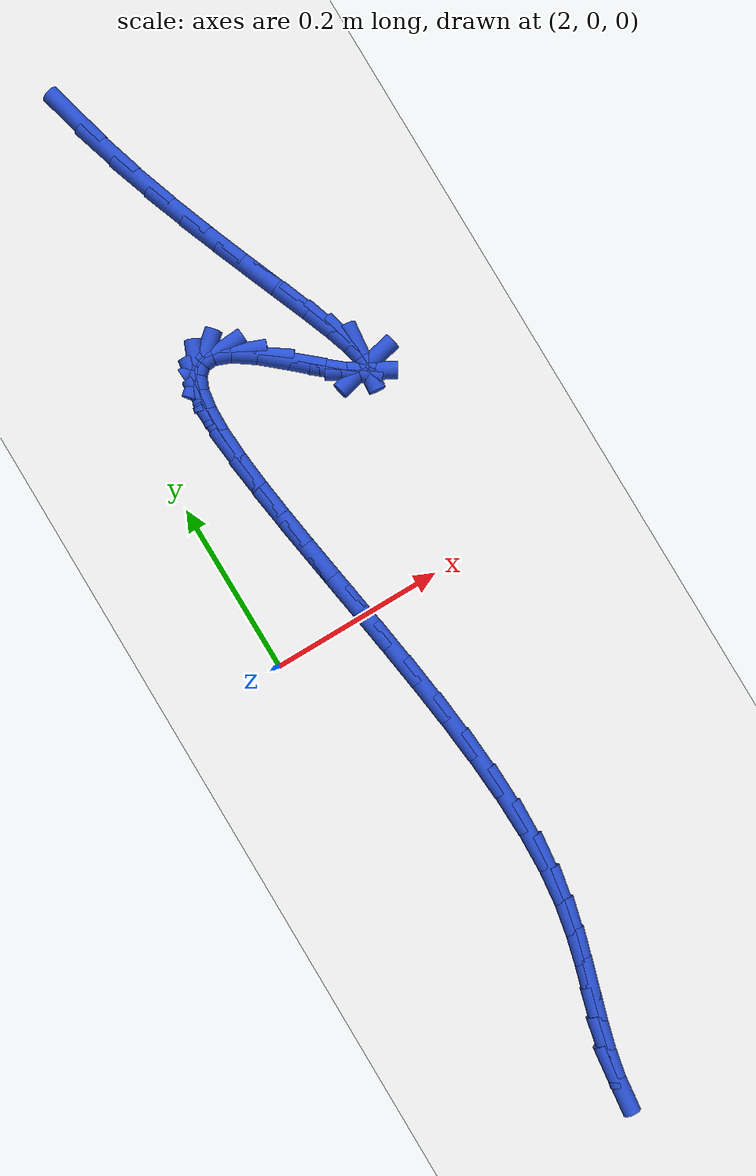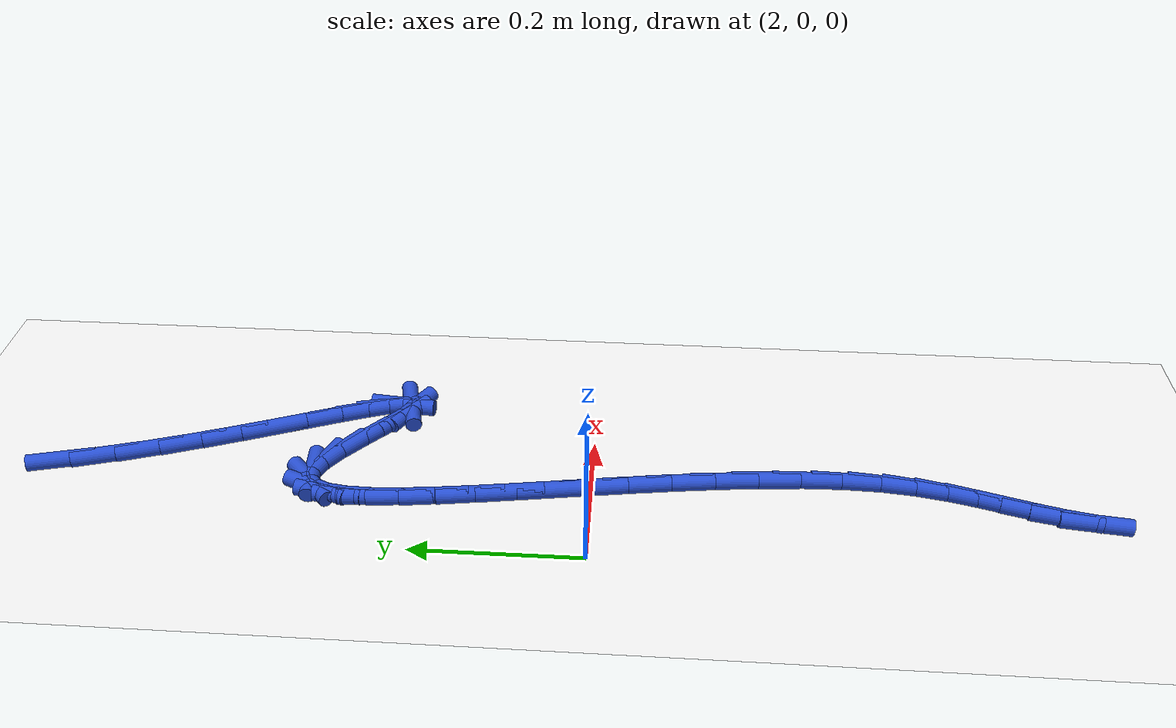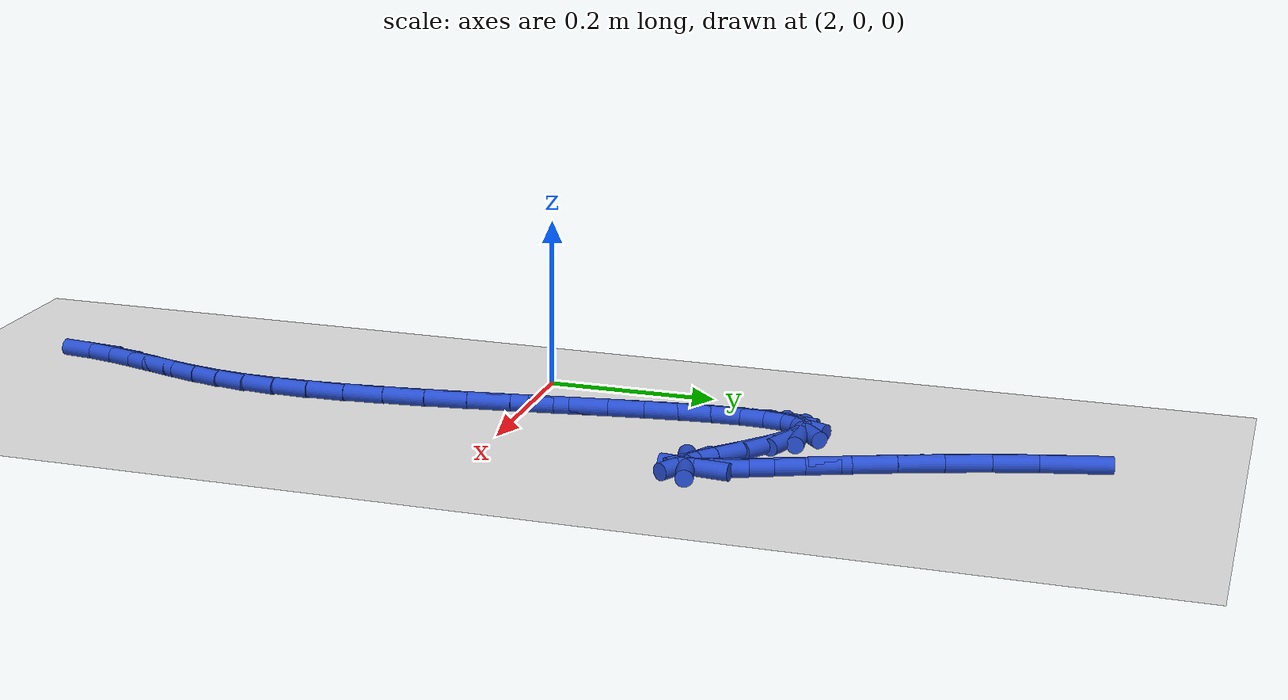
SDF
<sdf version="1.6">
 <world name="default">
  <model name="ground_plane">
   <static>1</static>
   <link name="link">
    <collision name="collision">
     <geometry><plane><normal>0 0 1</normal><size>100 100</size></plane></geometry>
     <surface><friction><ode><mu>100</mu><mu2>50</mu2></ode></friction></surface>
    </collision>
    <visual name="visual">
     <cast_shadows>0</cast_shadows>
     <geometry><plane><normal>0 0 1</normal><size>100 100</size></plane></geometry>
     <material>
      <script><uri>file://media/materials/scripts/gazebo.material</uri><name>Gazebo/WhiteGlow</name></script>
     </material>
    </visual>
   </link>
  </model>
  <model name="line">
   <link name="link_110">
    <pose>2.1158589371976775 0.6339047028070735 0.01 0 1.57 -1.317194379777008</pose>
    <collision name="collision">
     <geometry><cylinder><radius>0.01</radius><length>0.08</length></cylinder></geometry>
    </collision>
    <visual name="visual">
     <material>
      <script><name>Gazebo/Blue</name><uri>file://media/materials/scripts/gazebo.material</uri></script>
     </material>
     <geometry><cylinder><radius>0.01</radius><length>0.08</length></cylinder></geometry>
    </visual>
   </link>
   <link name="link_111">
    <pose>2.1286142076120895 0.5846911867525364 0.01 0 1.57 -1.2710996903935277</pose>
    <collision name="collision">
     <geometry><cylinder><radius>0.01</radius><length>0.08</length></cylinder></geometry>
    </collision>
    <visual name="visual">
     <material>
      <script><name>Gazebo/Blue</name><uri>file://media/materials/scripts/gazebo.material</uri></script>
     </material>
     <geometry><cylinder><radius>0.01</radius><length>0.08</length></cylinder></geometry>
    </visual>
   </link>
   <link name="link_112">
    <pose>2.143838883842318 0.5354210099387978 0.01 0 1.57 -1.236322468500971</pose>
    <collision name="collision">
     <geometry><cylinder><radius>0.01</radius><length>0.08</length></cylinder></geometry>
    </collision>
    <visual name="visual">
     <material>
      <script><name>Gazebo/Blue</name><uri>file://media/materials/scripts/gazebo.material</uri></script>
     </material>
     <geometry><cylinder><radius>0.01</radius><length>0.08</length></cylinder></geometry>
    </visual>
   </link>
   <link name="link_113">
    <pose>2.1606768922853425 0.4869706760344255 0.01 0 1.57 -1.2108537880325057</pose>
    <collision name="collision">
     <geometry><cylinder><radius>0.01</radius><length>0.08</length></cylinder></geometry>
    </collision>
    <visual name="visual">
     <material>
      <script><name>Gazebo/Blue</name><uri>file://media/materials/scripts/gazebo.material</uri></script>
     </material>
     <geometry><cylinder><radius>0.01</radius><length>0.08</length></cylinder></geometry>
    </visual>
   </link>
   <link name="link_114">
    <pose>2.1782721593381407 0.4402166887079872 0.01 0 1.57 -1.1937288525492873</pose>
    <collision name="collision">
     <geometry><cylinder><radius>0.01</radius><length>0.08</length></cylinder></geometry>
    </collision>
    <visual name="visual">
     <material>
      <script><name>Gazebo/Blue</name><uri>file://media/materials/scripts/gazebo.material</uri></script>
     </material>
     <geometry><cylinder><radius>0.01</radius><length>0.08</length></cylinder></geometry>
    </visual>
   </link>
   <link name="link_115">
    <pose>2.19576861139769 0.39603555162805004 0.01 0 1.57 -1.1850342734372086</pose>
    <collision name="collision">
     <geometry><cylinder><radius>0.01</radius><length>0.08</length></cylinder></geometry>
    </collision>
    <visual name="visual">
     <material>
      <script><name>Gazebo/Blue</name><uri>file://media/materials/scripts/gazebo.material</uri></script>
     </material>
     <geometry><cylinder><radius>0.01</radius><length>0.08</length></cylinder></geometry>
    </visual>
   </link>
   <link name="link_116">
    <pose>2.2123101748609697 0.3553037684631832 0.01 0 1.57 -1.186312705276774</pose>
    <collision name="collision">
     <geometry><cylinder><radius>0.01</radius><length>0.08</length></cylinder></geometry>
    </collision>
    <visual name="visual">
     <material>
      <script><name>Gazebo/Blue</name><uri>file://media/materials/scripts/gazebo.material</uri></script>
     </material>
     <geometry><cylinder><radius>0.01</radius><length>0.08</length></cylinder></geometry>
    </visual>
   </link>
   <link name="link_117">
    <pose>2.2270407761249578 0.31889784288195366 0.01 0 1.57 -1.2018873197415114</pose>
    <collision name="collision">
     <geometry><cylinder><radius>0.01</radius><length>0.08</length></cylinder></geometry>
    </collision>
    <visual name="visual">
     <material>
      <script><name>Gazebo/Blue</name><uri>file://media/materials/scripts/gazebo.material</uri></script>
     </material>
     <geometry><cylinder><radius>0.01</radius><length>0.08</length></cylinder></geometry>
    </visual>
   </link>
   <link name="link_118">
    <pose>2.2391043415866325 0.28769427855292884 0.01 0 1.57 -1.2431270975575117</pose>
    <collision name="collision">
     <geometry><cylinder><radius>0.01</radius><length>0.08</length></cylinder></geometry>
    </collision>
    <visual name="visual">
     <material>
      <script><name>Gazebo/Blue</name><uri>file://media/materials/scripts/gazebo.material</uri></script>
     </material>
     <geometry><cylinder><radius>0.01</radius><length>0.08</length></cylinder></geometry>
    </visual>
   </link>
   <link name="link_119">
    <pose>2.2476447976429705 0.2625695791446774 0.01 0 1.57 -1.3456519502989017</pose>
    <collision name="collision">
     <geometry><cylinder><radius>0.01</radius><length>0.08</length></cylinder></geometry>
    </collision>
    <visual name="visual">
     <material>
      <script><name>Gazebo/Blue</name><uri>file://media/materials/scripts/gazebo.material</uri></script>
     </material>
     <geometry><cylinder><radius>0.01</radius><length>0.08</length></cylinder></geometry>
    </visual>
   </link>
   <link name="link_120">
    <pose>2.251806070690952 0.24440024832576662 0.01 0 1.57 1.4672752990570375</pose>
    <collision name="collision">
     <geometry><cylinder><radius>0.01</radius><length>0.08</length></cylinder></geometry>
    </collision>
    <visual name="visual">
     <material>
      <script><name>Gazebo/Blue</name><uri>file://media/materials/scripts/gazebo.material</uri></script>
     </material>
     <geometry><cylinder><radius>0.01</radius><length>0.08</length></cylinder></geometry>
    </visual>
   </link>
   <link name="link_121">
    <pose>2.2507320871275547 0.23406278976476436 0.01 0 1.57 0.22355651961956546</pose>
    <collision name="collision">
     <geometry><cylinder><radius>0.01</radius><length>0.08</length></cylinder></geometry>
    </collision>
    <visual name="visual">
     <material>
      <script><name>Gazebo/Blue</name><uri>file://media/materials/scripts/gazebo.material</uri></script>
     </material>
     <geometry><cylinder><radius>0.01</radius><length>0.08</length></cylinder></geometry>
    </visual>
   </link>
   <link name="link_122">
    <pose>2.2435667733497557 0.23243370713023825 0.01 0 1.57 -0.5133251954797678</pose>
    <collision name="collision">
     <geometry><cylinder><radius>0.01</radius><length>0.08</length></cylinder></geometry>
    </collision>
    <visual name="visual">
     <material>
      <script><name>Gazebo/Blue</name><uri>file://media/materials/scripts/gazebo.material</uri></script>
     </material>
     <geometry><cylinder><radius>0.01</radius><length>0.08</length></cylinder></geometry>
    </visual>
   </link>
   <link name="link_123">
    <pose>2.2294540557545344 0.2403895040907564 0.01 0 1.57 -0.6924792559503505</pose>
    <collision name="collision">
     <geometry><cylinder><radius>0.01</radius><length>0.08</length></cylinder></geometry>
    </collision>
    <visual name="visual">
     <material>
      <script><name>Gazebo/Blue</name><uri>file://media/materials/scripts/gazebo.material</uri></script>
     </material>
     <geometry><cylinder><radius>0.01</radius><length>0.08</length></cylinder></geometry>
    </visual>
   </link>
   <link name="link_124">
    <pose>2.207921578642005 0.2582509680688755 0.01 0 1.57 -0.7312109668631709</pose>
    <collision name="collision">
     <geometry><cylinder><radius>0.01</radius><length>0.08</length></cylinder></geometry>
    </collision>
    <visual name="visual">
     <material>
      <script><name>Gazebo/Blue</name><uri>file://media/materials/scripts/gazebo.material</uri></script>
     </material>
     <geometry><cylinder><radius>0.01</radius><length>0.08</length></cylinder></geometry>
    </visual>
   </link>
   <link name="link_125">
    <pose>2.1815653413156193 0.2818951669996196 0.01 0 1.57 -0.7072099013966577</pose>
    <collision name="collision">
     <geometry><cylinder><radius>0.01</radius><length>0.08</length></cylinder></geometry>
    </collision>
    <visual name="visual">
     <material>
      <script><name>Gazebo/Blue</name><uri>file://media/materials/scripts/gazebo.material</uri></script>
     </material>
     <geometry><cylinder><radius>0.01</radius><length>0.08</length></cylinder></geometry>
    </visual>
   </link>
   <link name="link_126">
    <pose>2.154453119203809 0.3050676813464699 0.01 0 1.57 -0.6073813588266773</pose>
    <collision name="collision">
     <geometry><cylinder><radius>0.01</radius><length>0.08</length></cylinder></geometry>
    </collision>
    <visual name="visual">
     <material>
      <script><name>Gazebo/Blue</name><uri>file://media/materials/scripts/gazebo.material</uri></script>
     </material>
     <geometry><cylinder><radius>0.01</radius><length>0.08</length></cylinder></geometry>
    </visual>
   </link>
   <link name="link_127">
    <pose>2.130541407724269 0.32168699416335994 0.01 0 1.57 -0.37546895505001837</pose>
    <collision name="collision">
     <geometry><cylinder><radius>0.01</radius><length>0.08</length></cylinder></geometry>
    </collision>
    <visual name="visual">
     <material>
      <script><name>Gazebo/Blue</name><uri>file://media/materials/scripts/gazebo.material</uri></script>
     </material>
     <geometry><cylinder><radius>0.01</radius><length>0.08</length></cylinder></geometry>
    </visual>
   </link>
   <link name="link_128">
    <pose>2.111511715236256 0.3291878955446508 0.01 0 1.57 0.07212743209415834</pose>
    <collision name="collision">
     <geometry><cylinder><radius>0.01</radius><length>0.08</length></cylinder></geometry>
    </collision>
    <visual name="visual">
     <material>
      <script><name>Gazebo/Blue</name><uri>file://media/materials/scripts/gazebo.material</uri></script>
     </material>
     <geometry><cylinder><radius>0.01</radius><length>0.08</length></cylinder></geometry>
    </visual>
   </link>
   <link name="link_129">
    <pose>2.0970169802356833 0.3281406107802763 0.01 0 1.57 0.7097381465527445</pose>
    <collision name="collision">
     <geometry><cylinder><radius>0.01</radius><length>0.08</length></cylinder></geometry>
    </collision>
    <visual name="visual">
     <material>
      <script><name>Gazebo/Blue</name><uri>file://media/materials/scripts/gazebo.material</uri></script>
     </material>
     <geometry><cylinder><radius>0.01</radius><length>0.08</length></cylinder></geometry>
    </visual>
   </link>
   <link name="link_130">
    <pose>2.086639066683292 0.3192252206810993 0.01 0 1.57 1.17762160197824</pose>
    <collision name="collision">
     <geometry><cylinder><radius>0.01</radius><length>0.08</length></cylinder></geometry>
    </collision>
    <visual name="visual">
     <material>
      <script><name>Gazebo/Blue</name><uri>file://media/materials/scripts/gazebo.material</uri></script>
     </material>
     <geometry><cylinder><radius>0.01</radius><length>0.08</length></cylinder></geometry>
    </visual>
   </link>
   <link name="link_131">
    <pose>2.0799598385398257 0.303121806057983 0.01 0 1.57 1.4216047064702542</pose>
    <collision name="collision">
     <geometry><cylinder><radius>0.01</radius><length>0.08</length></cylinder></geometry>
    </collision>
    <visual name="visual">
     <material>
      <script><name>Gazebo/Blue</name><uri>file://media/materials/scripts/gazebo.material</uri></script>
     </material>
     <geometry><cylinder><radius>0.01</radius><length>0.08</length></cylinder></geometry>
    </visual>
   </link>
   <link name="link_132">
    <pose>2.0765611597660247 0.2805104477217902 0.01 0 1.57 1.5519420166640043</pose>
    <collision name="collision">
     <geometry><cylinder><radius>0.01</radius><length>0.08</length></cylinder></geometry>
    </collision>
    <visual name="visual">
     <material>
      <script><name>Gazebo/Blue</name><uri>file://media/materials/scripts/gazebo.material</uri></script>
     </material>
     <geometry><cylinder><radius>0.01</radius><length>0.08</length></cylinder></geometry>
    </visual>
   </link>
   <link name="link_133">
    <pose>2.076024894322633 0.2520712264833829 0.01 0 1.57 -1.5140492775937615</pose>
    <collision name="collision">
     <geometry><cylinder><radius>0.01</radius><length>0.08</length></cylinder></geometry>
    </collision>
    <visual name="visual">
     <material>
      <script><name>Gazebo/Blue</name><uri>file://media/materials/scripts/gazebo.material</uri></script>
     </material>
     <geometry><cylinder><radius>0.01</radius><length>0.08</length></cylinder></geometry>
    </visual>
   </link>
   <link name="link_134">
    <pose>2.077932906170392 0.2184842231536257 0.01 0 1.57 -1.4677807705174393</pose>
    <collision name="collision">
     <geometry><cylinder><radius>0.01</radius><length>0.08</length></cylinder></geometry>
    </collision>
    <visual name="visual">
     <material>
      <script><name>Gazebo/Blue</name><uri>file://media/materials/scripts/gazebo.material</uri></script>
     </material>
     <geometry><cylinder><radius>0.01</radius><length>0.08</length></cylinder></geometry>
    </visual>
   </link>
   <link name="link_135">
    <pose>2.081867059270045 0.18042951854338093 0.01 0 1.57 -1.4391094551252803</pose>
    <collision name="collision">
     <geometry><cylinder><radius>0.01</radius><length>0.08</length></cylinder></geometry>
    </collision>
    <visual name="visual">
     <material>
      <script><name>Gazebo/Blue</name><uri>file://media/materials/scripts/gazebo.material</uri></script>
     </material>
     <geometry><cylinder><radius>0.01</radius><length>0.08</length></cylinder></geometry>
    </visual>
   </link>
   <link name="link_136">
    <pose>2.087409217582333 0.13858719346351156 0.01 0 1.57 -1.4221338008619961</pose>
    <collision name="collision">
     <geometry><cylinder><radius>0.01</radius><length>0.08</length></cylinder></geometry>
    </collision>
    <visual name="visual">
     <material>
      <script><name>Gazebo/Blue</name><uri>file://media/materials/scripts/gazebo.material</uri></script>
     </material>
     <geometry><cylinder><radius>0.01</radius><length>0.08</length></cylinder></geometry>
    </visual>
   </link>
   <link name="link_137">
    <pose>2.0941412450679993 0.09363732872488054 0.01 0 1.57 -1.4137181408235187</pose>
    <collision name="collision">
     <geometry><cylinder><radius>0.01</radius><length>0.08</length></cylinder></geometry>
    </collision>
    <visual name="visual">
     <material>
      <script><name>Gazebo/Blue</name><uri>file://media/materials/scripts/gazebo.material</uri></script>
     </material>
     <geometry><cylinder><radius>0.01</radius><length>0.08</length></cylinder></geometry>
    </visual>
   </link>
   <link name="link_138">
    <pose>2.101645005687786 0.04626000513835078 0.01 0 1.57 -1.4121925621940952</pose>
    <collision name="collision">
     <geometry><cylinder><radius>0.01</radius><length>0.08</length></cylinder></geometry>
    </collision>
    <visual name="visual">
     <material>
      <script><name>Gazebo/Blue</name><uri>file://media/materials/scripts/gazebo.material</uri></script>
     </material>
     <geometry><cylinder><radius>0.01</radius><length>0.08</length></cylinder></geometry>
    </visual>
   </link>
   <link name="link_139">
    <pose>2.109502363402435 -0.0028646964852147294 0.01 0 1.57 -1.4167659609694032</pose>
    <collision name="collision">
     <geometry><cylinder><radius>0.01</radius><length>0.08</length></cylinder></geometry>
    </collision>
    <visual name="visual">
     <material>
      <script><name>Gazebo/Blue</name><uri>file://media/materials/scripts/gazebo.material</uri></script>
     </material>
     <geometry><cylinder><radius>0.01</radius><length>0.08</length></cylinder></geometry>
    </visual>
   </link>
   <link name="link_140">
    <pose>2.1172951821726884 -0.053056695334954565 0.01 0 1.57 -1.4272616169550465</pose>
    <collision name="collision">
     <geometry><cylinder><radius>0.01</radius><length>0.08</length></cylinder></geometry>
    </collision>
    <visual name="visual">
     <material>
      <script><name>Gazebo/Blue</name><uri>file://media/materials/scripts/gazebo.material</uri></script>
     </material>
     <geometry><cylinder><radius>0.01</radius><length>0.08</length></cylinder></geometry>
    </visual>
   </link>
   <link name="link_141">
    <pose>2.1246053259592896 -0.1036359106000028 0.01 0 1.57 -1.4440231551604403</pose>
    <collision name="collision">
     <geometry><cylinder><radius>0.01</radius><length>0.08</length></cylinder></geometry>
    </collision>
    <visual name="visual">
     <material>
      <script><name>Gazebo/Blue</name><uri>file://media/materials/scripts/gazebo.material</uri></script>
     </material>
     <geometry><cylinder><radius>0.01</radius><length>0.08</length></cylinder></geometry>
    </visual>
   </link>
   <link name="link_142">
    <pose>2.131014658722979 -0.15392226146949778 0.01 0 1.57 -1.4679354464349277</pose>
    <collision name="collision">
     <geometry><cylinder><radius>0.01</radius><length>0.08</length></cylinder></geometry>
    </collision>
    <visual name="visual">
     <material>
      <script><name>Gazebo/Blue</name><uri>file://media/materials/scripts/gazebo.material</uri></script>
     </material>
     <geometry><cylinder><radius>0.01</radius><length>0.08</length></cylinder></geometry>
    </visual>
   </link>
   <link name="link_143">
    <pose>2.1361050444245007 -0.20323566713257674 0.01 0 1.57 -1.5005537955715287</pose>
    <collision name="collision">
     <geometry><cylinder><radius>0.01</radius><length>0.08</length></cylinder></geometry>
    </collision>
    <visual name="visual">
     <material>
      <script><name>Gazebo/Blue</name><uri>file://media/materials/scripts/gazebo.material</uri></script>
     </material>
     <geometry><cylinder><radius>0.01</radius><length>0.08</length></cylinder></geometry>
    </visual>
   </link>
   <link name="link_144">
    <pose>2.1394583470245956 -0.25089604677837657 0.01 0 1.57 -1.5443706344644177</pose>
    <collision name="collision">
     <geometry><cylinder><radius>0.01</radius><length>0.08</length></cylinder></geometry>
    </collision>
    <visual name="visual">
     <material>
      <script><name>Gazebo/Blue</name><uri>file://media/materials/scripts/gazebo.material</uri></script>
     </material>
     <geometry><cylinder><radius>0.01</radius><length>0.08</length></cylinder></geometry>
    </visual>
   </link>
   <link name="link_145">
    <pose>2.140656430484007 -0.29622331959603443 0.01 0 1.57 1.5383062524820228</pose>
    <collision name="collision">
     <geometry><cylinder><radius>0.01</radius><length>0.08</length></cylinder></geometry>
    </collision>
    <visual name="visual">
     <material>
      <script><name>Gazebo/Blue</name><uri>file://media/materials/scripts/gazebo.material</uri></script>
     </material>
     <geometry><cylinder><radius>0.01</radius><length>0.08</length></cylinder></geometry>
    </visual>
   </link>
   <link name="link_146">
    <pose>2.1392811587634775 -0.33853740477468736 0.01 0 1.57 1.4605052457427696</pose>
    <collision name="collision">
     <geometry><cylinder><radius>0.01</radius><length>0.08</length></cylinder></geometry>
    </collision>
    <visual name="visual">
     <material>
      <script><name>Gazebo/Blue</name><uri>file://media/materials/scripts/gazebo.material</uri></script>
     </material>
     <geometry><cylinder><radius>0.01</radius><length>0.08</length></cylinder></geometry>
    </visual>
   </link>
   <link name="link_147">
    <pose>2.134993871242774 -0.3772521373669139 0.01 0 1.57 1.3818276983683746</pose>
    <collision name="collision">
     <geometry><cylinder><radius>0.01</radius><length>0.08</length></cylinder></geometry>
    </collision>
    <visual name="visual">
     <material>
      <script><name>Gazebo/Blue</name><uri>file://media/materials/scripts/gazebo.material</uri></script>
     </material>
     <geometry><cylinder><radius>0.01</radius><length>0.08</length></cylinder></geometry>
    </visual>
   </link>
   <link name="link_148">
    <pose>2.1282179245211506 -0.4126818258798772 0.01 0 1.57 1.320773313923556</pose>
    <collision name="collision">
     <geometry><cylinder><radius>0.01</radius><length>0.08</length></cylinder></geometry>
    </collision>
    <visual name="visual">
     <material>
      <script><name>Gazebo/Blue</name><uri>file://media/materials/scripts/gazebo.material</uri></script>
     </material>
     <geometry><cylinder><radius>0.01</radius><length>0.08</length></cylinder></geometry>
    </visual>
   </link>
   <link name="link_149">
    <pose>2.1198009621627354 -0.44564215745003044 0.01 0 1.57 1.2848530465187467</pose>
    <collision name="collision">
     <geometry><cylinder><radius>0.01</radius><length>0.08</length></cylinder></geometry>
    </collision>
    <visual name="visual">
     <material>
      <script><name>Gazebo/Blue</name><uri>file://media/materials/scripts/gazebo.material</uri></script>
     </material>
     <geometry><cylinder><radius>0.01</radius><length>0.08</length></cylinder></geometry>
    </visual>
   </link>
   <link name="link_150">
    <pose>2.1105952081285086 -0.4769542318549918 0.01 0 1.57 1.2794344339909836</pose>
    <collision name="collision">
     <geometry><cylinder><radius>0.01</radius><length>0.08</length></cylinder></geometry>
    </collision>
    <visual name="visual">
     <material>
      <script><name>Gazebo/Blue</name><uri>file://media/materials/scripts/gazebo.material</uri></script>
     </material>
     <geometry><cylinder><radius>0.01</radius><length>0.08</length></cylinder></geometry>
    </visual>
   </link>
   <link name="link_151">
    <pose>2.1014528863794477 -0.507439148872382 0.01 0 1.57 1.3071648144225114</pose>
    <collision name="collision">
     <geometry><cylinder><radius>0.01</radius><length>0.08</length></cylinder></geometry>
    </collision>
    <visual name="visual">
     <material>
      <script><name>Gazebo/Blue</name><uri>file://media/materials/scripts/gazebo.material</uri></script>
     </material>
     <geometry><cylinder><radius>0.01</radius><length>0.08</length></cylinder></geometry>
    </visual>
   </link>
   <link name="link_152">
    <pose>2.0932262208765304 -0.537918008279821 0.01 0 1.57 1.367263021764257</pose>
    <collision name="collision">
     <geometry><cylinder><radius>0.01</radius><length>0.08</length></cylinder></geometry>
    </collision>
    <visual name="visual">
     <material>
      <script><name>Gazebo/Blue</name><uri>file://media/materials/scripts/gazebo.material</uri></script>
     </material>
     <geometry><cylinder><radius>0.01</radius><length>0.08</length></cylinder></geometry>
    </visual>
   </link>
   <link name="link_153">
    <pose>2.0867674355807346 -0.5692119098549288 0.01 0 1.57 1.4547272429171207</pose>
    <collision name="collision">
     <geometry><cylinder><radius>0.01</radius><length>0.08</length></cylinder></geometry>
    </collision>
    <visual name="visual">
     <material>
      <script><name>Gazebo/Blue</name><uri>file://media/materials/scripts/gazebo.material</uri></script>
     </material>
     <geometry><cylinder><radius>0.01</radius><length>0.08</length></cylinder></geometry>
    </visual>
   </link>
  </model>
 </world>
</sdf>
